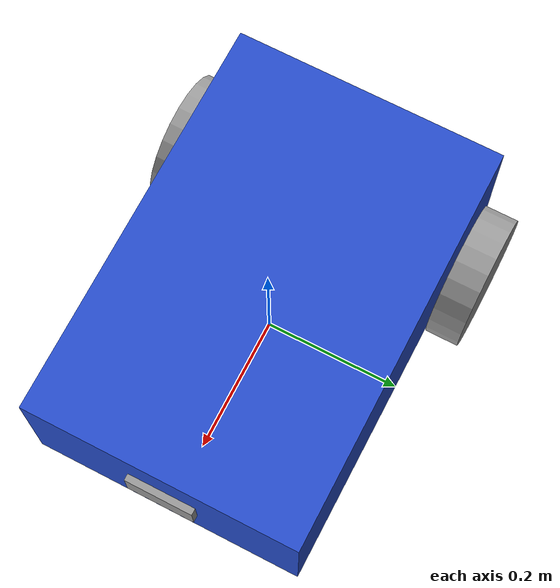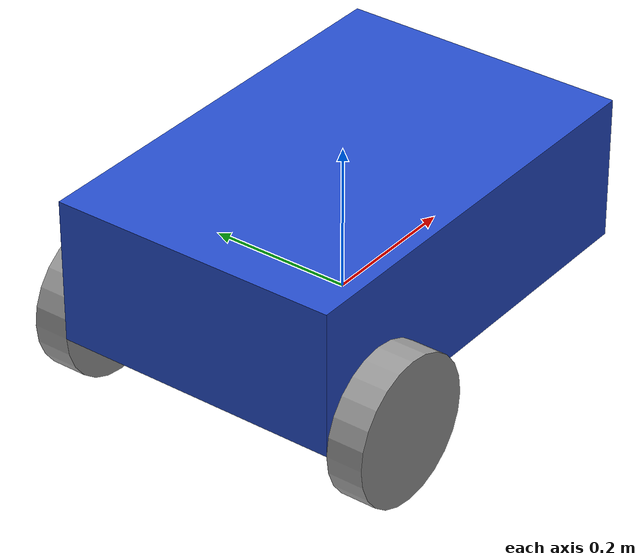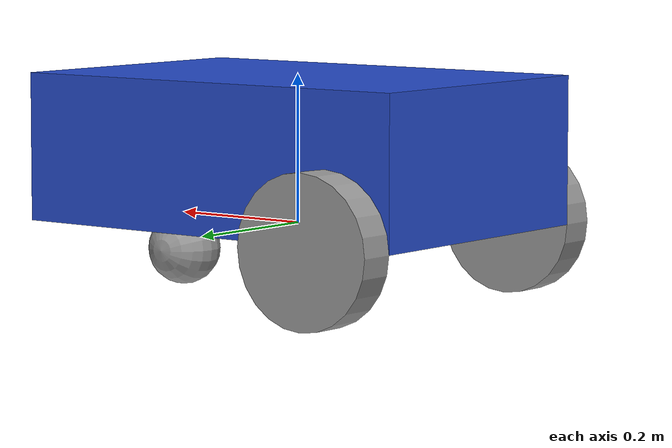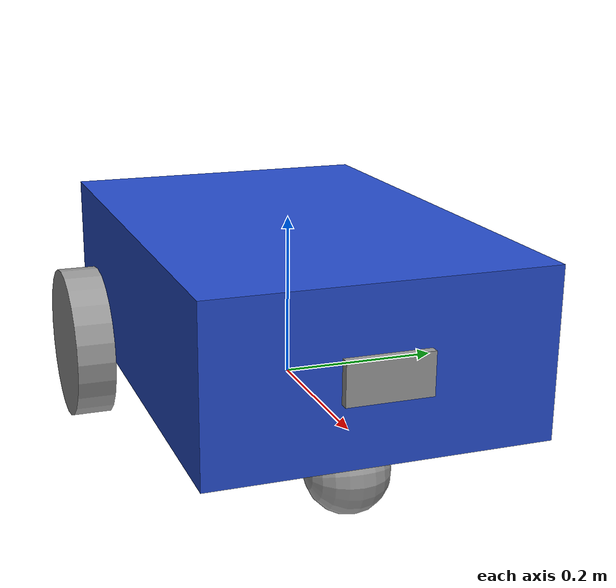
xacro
<?xml version="1.0"?>
<robot name="batmobile" xmlns:xacro = "http://www.ros.org/wiki/xacro">

    <!-- contains material and inertial tags which can be used by other robots also -->
    <xacro:include filename="common_properties.xacro"/>

    <!-- contains description of robot's links and joints -->
    <xacro:include filename="mobile_base.xacro"/>

    <!-- contains gazebo tags for simulation in gazebo  -->
    <xacro:include filename="mobile_base_gazebo.xacro"/>

    <xacro:include filename="camera.xacro"/>

</robot>

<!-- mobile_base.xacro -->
<robot xmlns:xacro = "http://www.ros.org/wiki/xacro">

    <!-- making variables using "xacro:property" -->
    <xacro:property name="base_length" value="0.6" />
    <xacro:property name="base_width" value="0.4" />
    <xacro:property name="base_height" value="0.2" />
    <xacro:property name="wheel_radius" value="0.1" />
    <xacro:property name="wheel_length" value="0.05" />

    <link name="base_footprint"/>

    <link name="base_link">
      <visual>
        <geometry>
           <box size="${base_length} ${base_width} ${base_height}" />
        </geometry>
        <origin xyz="0 0 ${base_height/2.0}" rpy="0 0 0" />
        <material name="blue" />
      </visual>
      <collision>
        <geometry>
            <box size="${base_length} ${base_width} ${base_height}" />
        </geometry>
        <origin xyz="0 0 ${base_height/2.0}" rpy="0 0 0" />
      </collision>
      <xacro:box_inertia m="5.0" l="${2*base_length}" w="${2*base_width}"
      h="${2*base_height}" xyz="0 0 ${base_height/2.0}" rpy="0 0 0"/>
    </link>

    <joint name="base_footprint"  type="fixed">
        <parent link = "base_link" />
        <child link = "base_footprint" />
        <origin xyz="0 0 ${-base_height/2.0}" rpy="0 0 0" />
        <axis xyz="0 0 0" />
    </joint>

    <joint name="base_right_wheel"  type="continuous">
        <parent link = "base_link" />
        <child link = "right_wheel" />
        <origin xyz="${-base_length/3.0} ${-base_width*0.5625} 0" rpy="0 0 0" />
        <axis xyz="0 1 0" />
    </joint>

    <!-- making function for right and left wheels using "xacro:macro" -->
    <xacro:macro name = "wheel_link" params = "prefix" >
        <link name="${prefix}_wheel">
            <visual>
                <geometry>
                    <cylinder radius="${wheel_radius}" length="${wheel_length}" />
                </geometry>
                <origin xyz ="0 0 0" rpy="${pi/2.0} 0 0" />
                <material name="grey" />
            </visual>
            <collision>
                <geometry>
                    <cylinder radius="${wheel_radius}" length="${wheel_length}" />
                </geometry>
                <origin xyz ="0 0 0" rpy="${pi/2.0} 0 0" />
            </collision>
            <xacro:solid-cylinder_inertia m= "2.0" r= "${2*wheel_radius}"  h="${2*wheel_length}"
                         xyz="0 0 0" rpy="${pi/2.0} 0 0"/>
        </link>
    </xacro:macro>

    <!-- to make right wheel -->
    <xacro:wheel_link prefix = "right" />

    <!-- to make right wheel -->
    <xacro:wheel_link prefix = "left" />

    <joint name="base_left_wheel"  type="continuous">
        <parent link = "base_link" />
        <child link = "left_wheel" />
        <origin xyz="${-base_length/3.0} ${base_width*0.5625} 0" rpy="0 0 0" />
        <axis xyz="0 1 0" />
    </joint>

    <joint name="base_castor_wheel"  type="fixed">
        <parent link = "base_link" />
        <child link = "castor_wheel" />
        <origin xyz="${base_length/3.0} 0 ${-base_height/4.0}" rpy="0 0 0" />
    </joint>

    <link name="castor_wheel">
        <visual>
           <geometry>
               <sphere radius="${wheel_radius/2.0}" />
           </geometry>
           <origin xyz ="0 0 0" rpy="${pi/2.0} 0 0" />
           <material name="grey" />
        </visual>
        <collision>
            <geometry>
                <sphere radius="${wheel_radius/2.0}" />
            </geometry>
            <origin xyz ="0 0 0" rpy="${pi/2.0} 0 0" />
        </collision>
        <xacro:solid-sphere_inertia m= "1.0" r= "${2*wheel_radius/2.0}" xyz= "0 0 0" rpy= "${pi/2.0} 0 0"/>
    </link>

</robot>

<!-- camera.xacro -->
<robot name="batmobile" xmlns:xacro = "http://www.ros.org/wiki/xacro">

    <xacro:property name="camera_length" value="0.01"/>
    <xacro:property name="camera_width" value="0.1"/>
    <xacro:property name="camera_height" value="0.05"/>

    <link name = "camera_link">
        <visual>
            <geometry>
                <box size = "${camera_length} ${camera_width} ${camera_height}"/>
            </geometry>
            <material name= "grey" />
        </visual>
        <collision>
            <geometry>
                <box size = "${camera_length} ${camera_width} ${camera_height}" />
            </geometry>
        </collision>
        <xacro:box_inertia m="0.1" l="${camera_length}" w="${camera_width}"
        h="${camera_height}" xyz="0 0 0" rpy="0 0 0" />
    </link>

    <joint name = "base_camera_joint" type="fixed" >
        <parent link = "base_link" />
        <child link = "camera_link" />
        <origin xyz="${(base_length+camera_length)/2.0} 0 ${base_height/2.0}"
                                 rpy="0 0 0" />
        <axis xyz="0 0 0" />
    </joint>

    <!-- to make gazebo compatible with OpenCV-->

    <link name="camera_link_optical"/>

    <joint name="camera_optical_joint" type="fixed">
        <!-- these values have to be these values otherwise the gazebo camera
            image won't be aligned properly with the frame it is supposedly
            originating from -->
        <origin xyz="0 0 0" rpy="${-pi/2} 0 ${-pi/2}"/>
        <parent link="camera_link"/>
        <child link="camera_link_optical"/>
    </joint>

    <gazebo reference="camera_link">
        <material>Gazebo/Grey</material>
        <sensor name="camera_sensor" type="camera">
            <!-- position+orientation of sensor relative to camera_link-->
            <pose>0 0 0 0 0 0</pose>
            <visualize>true</visualize>
            <update_rate>10.0</update_rate>
            <plugin name="camera_controller" filename="libgazebo_ros_camera.so">
                <frame_name>camera_link_optical</frame_name>
            </plugin>
        </sensor>
    </gazebo>

</robot>
